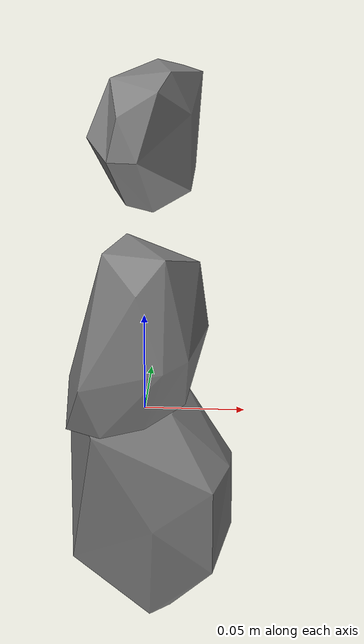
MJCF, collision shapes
<mujoco model="windex_bottle">
  <compiler angle="radian" />

  <asset>
    <mesh name="windex_bottle_visual_mesh" file="windex_bottle/textured.obj" />
    <mesh name="windex_bottle_collision_mesh_0" file="windex_bottle/textured_coacd_0.stl" />
    <mesh name="windex_bottle_collision_mesh_1" file="windex_bottle/textured_coacd_1.stl" />
    <mesh name="windex_bottle_collision_mesh_2" file="windex_bottle/textured_coacd_2.stl" />
    <mesh name="windex_bottle_collision_mesh_3" file="windex_bottle/textured_coacd_3.stl" />
    <texture name="windex_bottle_texture" type="2d" file="windex_bottle/texture_map.png" />
    <material name="windex_bottle_material" texture="windex_bottle_texture" />
  </asset>

  <worldbody>
    <body name="windex_bottle" pos="0 0 0" euler="0 0 0">
      <freejoint name="windex_bottle_joint" />
      <geom name="windex_bottle_visual_geom" type="mesh" mesh="windex_bottle_visual_mesh" material="windex_bottle_material" pos="-0.013942564305577316 -0.00843004384724436 -0.10236853791650995" euler="0 0 0" contype="0" conaffinity="0" group="0" />
      <geom name="windex_bottle_collision_geom_0" type="mesh" mesh="windex_bottle_collision_mesh_0" pos="-0.013942564305577316 -0.00843004384724436 -0.10236853791650995" euler="0 0 0" contype="1" conaffinity="1" group="3" />
      <geom name="windex_bottle_collision_geom_1" type="mesh" mesh="windex_bottle_collision_mesh_1" pos="-0.013942564305577316 -0.00843004384724436 -0.10236853791650995" euler="0 0 0" contype="1" conaffinity="1" group="3" />
      <geom name="windex_bottle_collision_geom_2" type="mesh" mesh="windex_bottle_collision_mesh_2" pos="-0.013942564305577316 -0.00843004384724436 -0.10236853791650995" euler="0 0 0" contype="1" conaffinity="1" group="3" />
      <geom name="windex_bottle_collision_geom_3" type="mesh" mesh="windex_bottle_collision_mesh_3" pos="-0.013942564305577316 -0.00843004384724436 -0.10236853791650995" euler="0 0 0" contype="1" conaffinity="1" group="3" />
      <inertial pos="0 0 0" euler="0 0 0" mass="1.022" diaginertia="0.001 0.001 0.001" />
    </body>
  </worldbody>
</mujoco>
